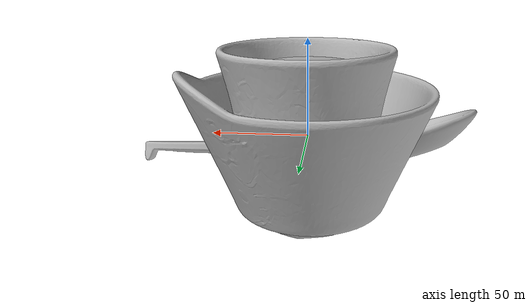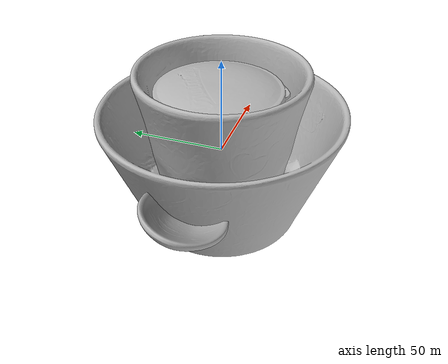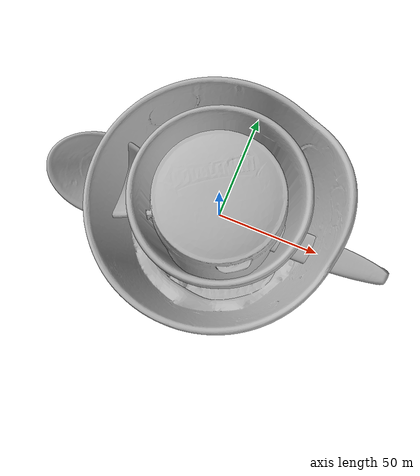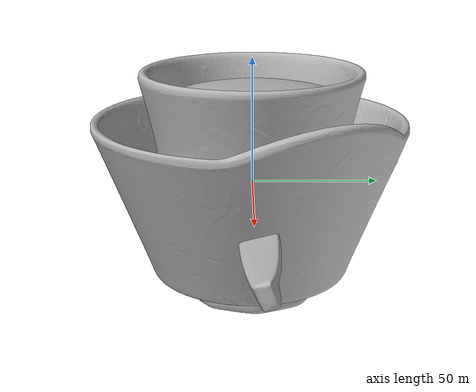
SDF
<sdf version="1.4">
 <world name="default">
  <light name="light1" type="point">
   <pose>0 0 1 0 0 0</pose>
   <diffuse>3 3 3 1</diffuse>
   <specular>3 3 3 1</specular>
  </light>
  <light name="light2" type="point">
   <pose>0 0.5 2 0 0 0</pose>
   <diffuse>1 1 1 1</diffuse>
   <specular>1 1 1 1</specular>
  </light>
  <light name="light3" type="point">
   <pose>0 0.5 2 0 0 0</pose>
   <diffuse>3 3 3 1</diffuse>
   <specular>3 3 3 1</specular>
  </light>
  <scene><ambient>0.7 0.7 0.7</ambient></scene>
  <model name="bottle1">
   <link name="link_bottle1">
    <collision name="default">
     <geometry>
      <mesh><uri>model://green_arrow/collision_meshes/collision.obj</uri><scale>1.0 1.0 1.0</scale></mesh>
     </geometry>
     <surface>
      <friction><ode><mu>0.5</mu><mu2>0.5</mu2></ode></friction>
      <contact><ode><max_vel>0</max_vel><min_depth>0.0001</min_depth><kp>1e8</kp></ode></contact>
     </surface>
    </collision>
    <visual name="default">
     <geometry>
      <mesh><uri>model://green_arrow/visual_meshes/visual.dae</uri><scale>1.0 1.0 1.0</scale></mesh>
     </geometry>
    </visual>
    <inertial>
     <mass>0.2764224410057068</mass>
     <pose>0.0005358477937988937 -0.0008270691032521427 0.002210969105362892 -0.06332196008274972 0.012988210902137025 0.674142157837799</pose>
     <inertia>
      <ixx>0.00020051825</ixx>
      <iyy>0.00020021446</iyy>
      <izz>0.00012947427</izz>
      <ixy>0</ixy>
      <ixz>0</ixz>
      <iyz>0</iyz>
     </inertia>
    </inertial>
   </link>
   <pose>-0.06636073440313339 -0.018971586599946022 0.038961660116910934 0.045285540403647316 0.02425642517267901 3.047494359085056</pose>
  </model>
  <model name="bottle2">
   <link name="link_bottle2">
    <collision name="default">
     <geometry>
      <mesh><uri>model://pure_zhen/collision_meshes/collision.obj</uri><scale>1.0 1.0 1.0</scale></mesh>
     </geometry>
     <surface>
      <friction><ode><mu>0.5</mu><mu2>0.5</mu2></ode></friction>
      <contact><ode><max_vel>0</max_vel><min_depth>0.0001</min_depth><kp>1e8</kp></ode></contact>
     </surface>
    </collision>
    <visual name="default">
     <geometry>
      <mesh><uri>model://pure_zhen/visual_meshes/visual.dae</uri><scale>1.0 1.0 1.0</scale></mesh>
     </geometry>
    </visual>
    <inertial>
     <mass>0.2372884750366211</mass>
     <pose>-8.582299778936431e-05 0.0002452346670906991 -0.0015797418309375644 -0.027641670524606855 0.005623077019143168 0.30585846122319743</pose>
     <inertia>
      <ixx>0.0007112664</ixx>
      <iyy>0.00071145216</iyy>
      <izz>7.51383e-05</izz>
      <ixy>0</ixy>
      <ixz>0</ixz>
      <iyz>0</iyz>
     </inertia>
    </inertial>
   </link>
   <pose>0.04274073243141174 -0.038839951157569885 0.0919484943151474 0.01948625328922777 -0.01609199630095871 -0.6529637637786637</pose>
  </model>
  <model name="silverware1">
   <link name="link_silverware1">
    <collision name="default">
     <geometry>
      <mesh><uri>model://doraemon_spoon/collision_meshes/collision.obj</uri><scale>1.0 1.0 1.0</scale></mesh>
     </geometry>
     <surface>
      <friction><ode><mu>0.5</mu><mu2>0.5</mu2></ode></friction>
      <contact><ode><max_vel>0</max_vel><min_depth>0.0001</min_depth><kp>1e8</kp></ode></contact>
     </surface>
    </collision>
    <visual name="default">
     <geometry>
      <mesh><uri>model://doraemon_spoon/visual_meshes/visual.dae</uri><scale>1.0 1.0 1.0</scale></mesh>
     </geometry>
    </visual>
    <inertial>
     <mass>0.020818473771214485</mass>
     <pose>-0.022165074944496155 -0.0006374582881107926 -0.0033325462136417627 -0.009147017253597407 0.0738041759980984 -0.014123826591698564</pose>
     <inertia>
      <ixx>1.6307007e-06</ixx>
      <iyy>4.631433e-05</iyy>
      <izz>4.7101734e-05</izz>
      <ixy>0</ixy>
      <ixz>0</ixz>
      <iyz>0</iyz>
     </inertia>
    </inertial>
   </link>
   <pose>0.2064625471830368 -0.05886394530534744 0.014739323407411575 0.2790320295726356 -0.010336598322103043 0.0338949338812655</pose>
  </model>
  <model name="stationery1">
   <link name="link_stationery1">
    <collision name="default">
     <geometry>
      <mesh><uri>model://correction_fuid/collision_meshes/collision.obj</uri><scale>1.0 1.0 1.0</scale></mesh>
     </geometry>
     <surface>
      <friction><ode><mu>0.5</mu><mu2>0.5</mu2></ode></friction>
      <contact><ode><max_vel>0</max_vel><min_depth>0.0001</min_depth><kp>1e8</kp></ode></contact>
     </surface>
    </collision>
    <visual name="default">
     <geometry>
      <mesh><uri>model://correction_fuid/visual_meshes/visual.dae</uri><scale>1.0 1.0 1.0</scale></mesh>
     </geometry>
    </visual>
    <inertial>
     <mass>0.03337494283914566</mass>
     <pose>-0.00012557735317386687 -0.0009722886024974287 -0.001618212671019137 -0.010846603423614418 0.019488389217657873 -0.01599245375892703</pose>
     <inertia>
      <ixx>3.2324202e-05</ixx>
      <iyy>1.9563013e-06</iyy>
      <izz>3.3165503e-05</izz>
      <ixy>0</ixy>
      <ixz>0</ixz>
      <iyz>0</iyz>
     </inertia>
    </inertial>
   </link>
   <pose>0.008206779137253761 -0.05819522589445114 0.009632831439375877 -0.001727127639368395 -0.05616845989692004 0.716819853033801</pose>
  </model>
  <model name="bowl1">
   <link name="link_bowl1">
    <collision name="default">
     <geometry>
      <mesh><uri>model://hello_kitty_bowl/collision_meshes/collision.obj</uri><scale>1.0 1.0 1.0</scale></mesh>
     </geometry>
     <surface>
      <friction><ode><mu>0.5</mu><mu2>0.5</mu2></ode></friction>
      <contact><ode><max_vel>0</max_vel><min_depth>0.0001</min_depth><kp>1e8</kp></ode></contact>
     </surface>
    </collision>
    <visual name="default">
     <geometry>
      <mesh><uri>model://hello_kitty_bowl/visual_meshes/visual.dae</uri><scale>1.0 1.0 1.0</scale></mesh>
     </geometry>
    </visual>
    <inertial>
     <mass>0.11590971797704697</mass>
     <pose>-0.0015402117278426886 0.0004577837826218456 -0.0080512510612607 0.004152729053700843 -0.12227221811834889 0.04345084117661168</pose>
     <inertia>
      <ixx>0.00017210246</ixx>
      <iyy>0.00018182951</iyy>
      <izz>0.00025734986</izz>
      <ixy>0</ixy>
      <ixz>0</ixz>
      <iyz>0</iyz>
     </inertia>
    </inertial>
   </link>
   <pose>0.236927792429924 -0.22047124803066254 0.03741418570280075 4.0516807413715046e-05 4.883998603098353e-06 0.3495409590422071</pose>
  </model>
  <model name="cup1">
   <link name="link_cup1">
    <collision name="default">
     <geometry>
      <mesh><uri>model://hello_kitty_cup/collision_meshes/collision.obj</uri><scale>1.0 1.0 1.0</scale></mesh>
     </geometry>
     <surface>
      <friction><ode><mu>0.5</mu><mu2>0.5</mu2></ode></friction>
      <contact><ode><max_vel>0</max_vel><min_depth>0.0001</min_depth><kp>1e8</kp></ode></contact>
     </surface>
    </collision>
    <visual name="default">
     <geometry>
      <mesh><uri>model://hello_kitty_cup/visual_meshes/visual.dae</uri><scale>1.0 1.0 1.0</scale></mesh>
     </geometry>
    </visual>
    <inertial>
     <mass>0.06483803689479828</mass>
     <pose>0.00027251249412074685 0.0002795030304696411 0.003044978016987443 0.05779149237921037 0.007964744961503711 -0.020451485374324563</pose>
     <inertia>
      <ixx>8.928983e-05</ixx>
      <iyy>9.0285175e-05</iyy>
      <izz>7.52867e-05</izz>
      <ixy>0</ixy>
      <ixz>0</ixz>
      <iyz>0</iyz>
     </inertia>
    </inertial>
   </link>
   <pose>-0.05376575514674187 0.054759711027145386 0.046216320246458054 -0.005881571299395661 0.010800384974826643 -1.0661066224920468</pose>
  </model>
  <model name="plate1">
   <link name="link_plate1">
    <collision name="default">
     <geometry>
      <mesh><uri>model://hello_kitty_plate/collision_meshes/collision.obj</uri><scale>1.0 1.0 1.0</scale></mesh>
     </geometry>
     <surface>
      <friction><ode><mu>0.5</mu><mu2>0.5</mu2></ode></friction>
      <contact><ode><max_vel>0</max_vel><min_depth>0.0001</min_depth><kp>1e8</kp></ode></contact>
     </surface>
    </collision>
    <visual name="default">
     <geometry>
      <mesh><uri>model://hello_kitty_plate/visual_meshes/visual.dae</uri><scale>1.0 1.0 1.0</scale></mesh>
     </geometry>
    </visual>
    <inertial>
     <mass>0.035439908504486084</mass>
     <pose>0.007314295507967472 0.00028937257593497634 -0.0027947179041802883 -0.00010432032854243346 -0.007054443681780748 -0.014449040989024118</pose>
     <inertia>
      <ixx>6.833875e-05</ixx>
      <iyy>0.00012897578</iyy>
      <izz>0.00019583687</izz>
      <ixy>0</ixy>
      <ixz>0</ixz>
      <iyz>0</iyz>
     </inertia>
    </inertial>
   </link>
   <pose>0.19185401499271393 -0.21634796261787415 0.07092669606208801 -0.007617826314184143 0.01758406219464745 2.42596964888642</pose>
  </model>
  <model name="box4">
   <link name="link_box4">
    <collision name="default">
     <geometry>
      <mesh><uri>model://wooden_puzzle1/collision_meshes/collision.obj</uri><scale>1.0 1.0 1.0</scale></mesh>
     </geometry>
     <surface>
      <friction><ode><mu>0.5</mu><mu2>0.5</mu2></ode></friction>
      <contact><ode><max_vel>0</max_vel><min_depth>0.0001</min_depth><kp>1e8</kp></ode></contact>
     </surface>
    </collision>
    <visual name="default">
     <geometry>
      <mesh><uri>model://wooden_puzzle1/visual_meshes/visual.dae</uri><scale>1.0 1.0 1.0</scale></mesh>
     </geometry>
    </visual>
    <inertial>
     <mass>0.022725893184542656</mass>
     <pose>-0.00017350679263472557 7.972260937094688e-05 -9.191554272547364e-05 -0.07784633272711022 -0.26361483493671084 -0.5528696267966513</pose>
     <inertia>
      <ixx>4.2877546e-06</ixx>
      <iyy>4.205213e-06</iyy>
      <izz>4.2553816e-06</izz>
      <ixy>0</ixy>
      <ixz>0</ixz>
      <iyz>0</iyz>
     </inertia>
    </inertial>
   </link>
   <pose>-0.08288170397281647 0.14678241312503815 0.01680198684334755 0.010516413890928002 -0.009457258556442966 -0.01761483182044775</pose>
  </model>
  <physics type="ode">
   <max_contacts>50</max_contacts>
   <ode>
    <solver><type>quick</type><iters>75</iters></solver>
    <constraints>
     <contact_max_correcting_vel>0</contact_max_correcting_vel>
     <contact_surface_layer>0</contact_surface_layer>
    </constraints>
   </ode>
  </physics>
 </world>
</sdf>
